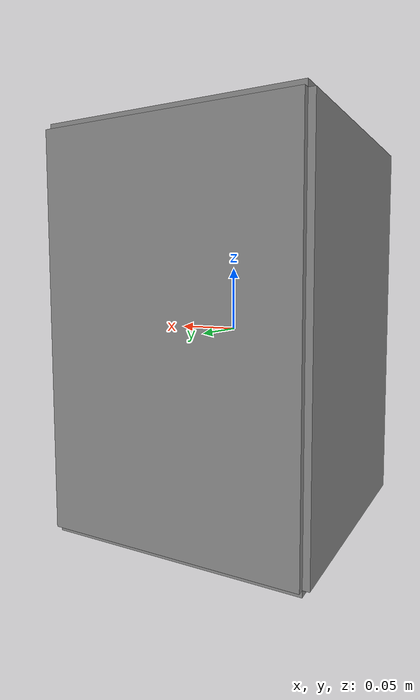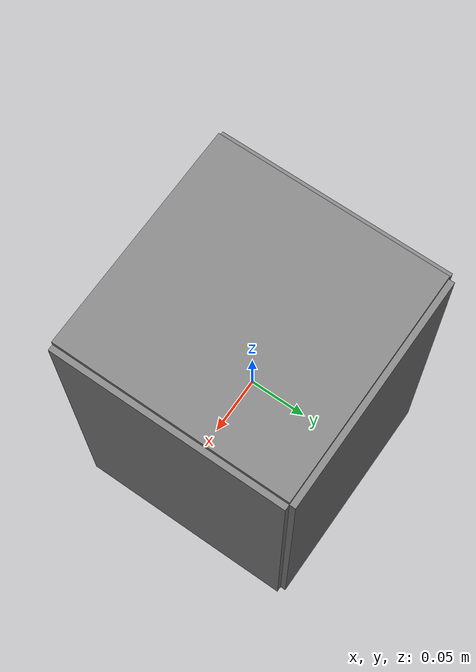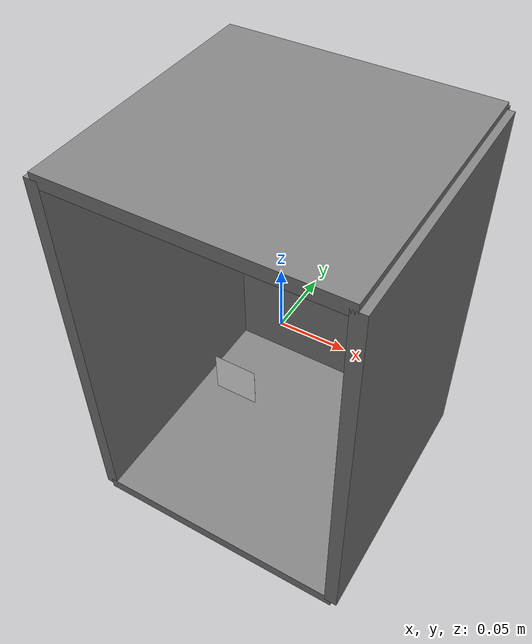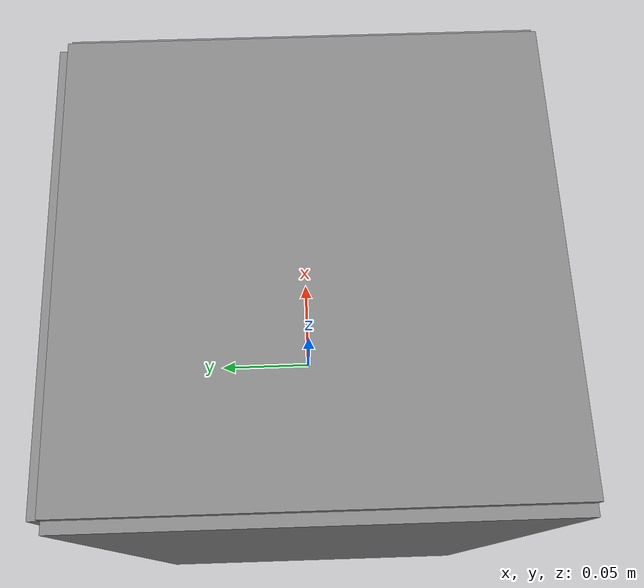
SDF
<?xml version="1.0"?>
<sdf version="1.6">
  <model name="printer_body_0">
    <static>true</static>
    <link name="body">

      <visual name="bottom">
        <pose>0 0 -0.15 0 0 0</pose>
        <geometry>
          <box>
            <size>0.2 0.2 0.01</size>
          </box>
        </geometry>
        <material>
          <ambient>0.5 0.5 0.5 1</ambient>
          <diffuse>0.5 0.5 0.5 1</diffuse>
        </material>
      </visual>
      <visual name="top">
        <pose>0 0 0.15 0 0 0</pose>
        <geometry>
          <box>
            <size>0.2 0.2 0.01</size>
          </box>
        </geometry>
        <material>
          <ambient>0.5 0.5 0.5 1</ambient>
          <diffuse>0.5 0.5 0.5 1</diffuse>
        </material>
      </visual>
      <visual name="left">
        <pose>-0.1 0 0 0 0 0</pose>
        <geometry>
          <box>
            <size>0.01 0.2 0.3</size>
          </box>
        </geometry>
        <material>
          <ambient>0.5 0.5 0.5 1</ambient>
          <diffuse>0.5 0.5 0.5 1</diffuse>
        </material>
      </visual>
      <visual name="right">
        <pose>0.1 0 0 0 0 0</pose>
        <geometry>
          <box>
            <size>0.01 0.2 0.3</size>
          </box>
        </geometry>
        <material>
          <ambient>0.5 0.5 0.5 1</ambient>
          <diffuse>0.5 0.5 0.5 1</diffuse>
        </material>
      </visual>
      <visual name="back">
        <pose>0 0.1 0 0 0 0</pose>
        <geometry>
          <box>
            <size>0.2 0.01 0.3</size>
          </box>
        </geometry>
        <material>
          <ambient>0.5 0.5 0.5 1</ambient>
          <diffuse>0.5 0.5 0.5 1</diffuse>
        </material>
      </visual>
      <visual name="static_marker">
        <pose>0 -0.06 0 0 0 1.5707963267948966</pose>
        <geometry>
          <box>
            <size>0.0001 0.03 0.03</size>
          </box>
        </geometry>
        <material>
          <ambient>1 1 1 1</ambient>
          <diffuse>1 1 1 1</diffuse>
          <specular>0.1 0.1 0.1 1</specular>
          <pbr>
            <metal>
              <albedo_map>materials/textures/marker4x4_0.png</albedo_map>
              <metalness>0.0</metalness>
              <roughness>1.0</roughness>
            </metal>
          </pbr>
        </material>
      </visual>
    </link>
  </model>
</sdf>
